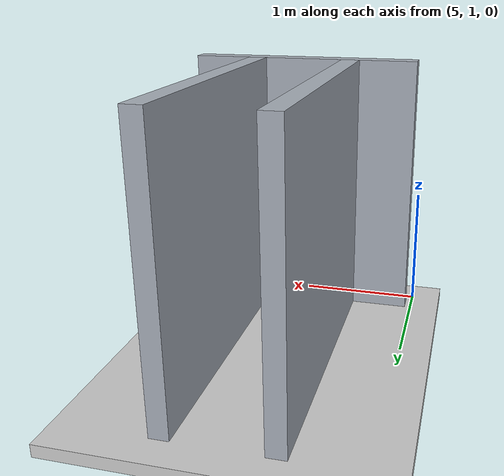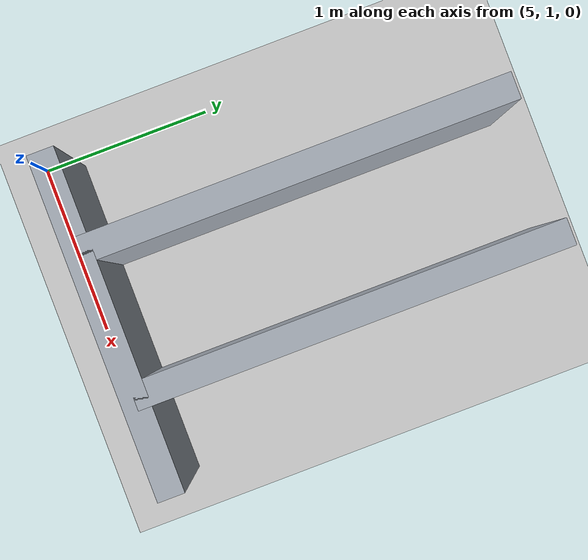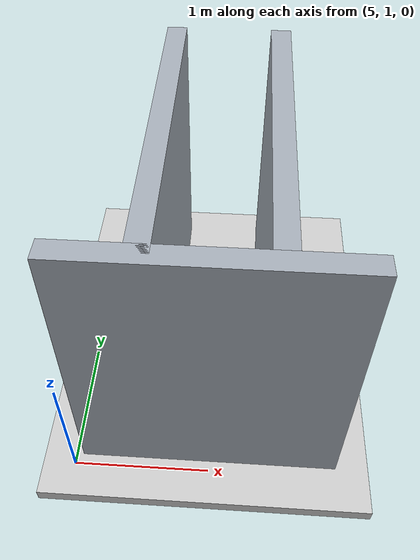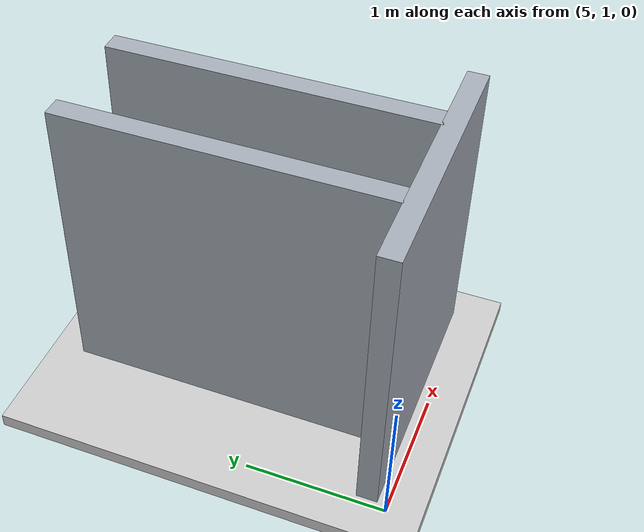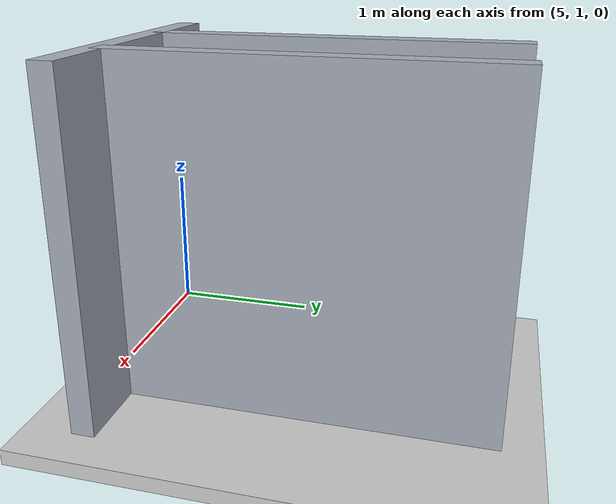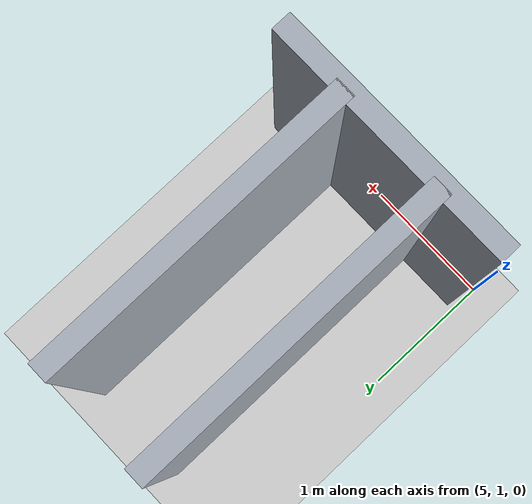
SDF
<sdf version="1.9">
 <world name="default">
  <model name="ground_plane">
   <static>true</static>
   <pose>4.85 0 -0.05 0 0 0</pose>
   <link name="body">
    <collision name="collision"><geometry><box><size>13.7 12 0.1</size></box></geometry></collision>
    <visual name="visual">
     <geometry><box><size>13.7 12 0.1</size></box></geometry>
     <material><ambient>0.8 0.8 0.8 1</ambient><diffuse>0.8 0.8 0.8 1</diffuse></material>
    </visual>
   </link>
  </model>
  <model name="room_1_1_1">
   <static>true</static>
   <pose>5.6 2.3499999999999996 1.1 0 0 0</pose>
   <link name="body">
    <collision name="collision"><geometry><box><size>0.15 2.4 2.2</size></box></geometry></collision>
    <visual name="visual">
     <geometry><box><size>0.15 2.4 2.2</size></box></geometry>
     <material><ambient>0.65 0.68 0.72 1</ambient><diffuse>0.65 0.68 0.72 1</diffuse></material>
    </visual>
   </link>
  </model>
  <model name="hall_1_2">
   <static>true</static>
   <pose>6.0 1.15 1.1 0 0 0</pose>
   <link name="body">
    <collision name="collision">
     <geometry><box><size>1.9000000000000004 0.15 2.2</size></box></geometry>
    </collision>
    <visual name="visual">
     <geometry><box><size>1.9000000000000004 0.15 2.2</size></box></geometry>
     <material><ambient>0.65 0.68 0.72 1</ambient><diffuse>0.65 0.68 0.72 1</diffuse></material>
    </visual>
   </link>
  </model>
  <model name="room_1_2_-1">
   <static>true</static>
   <pose>6.4 2.3499999999999996 1.1 0 0 0</pose>
   <link name="body">
    <collision name="collision"><geometry><box><size>0.15 2.4 2.2</size></box></geometry></collision>
    <visual name="visual">
     <geometry><box><size>0.15 2.4 2.2</size></box></geometry>
     <material><ambient>0.65 0.68 0.72 1</ambient><diffuse>0.65 0.68 0.72 1</diffuse></material>
    </visual>
   </link>
  </model>
 </world>
</sdf>
